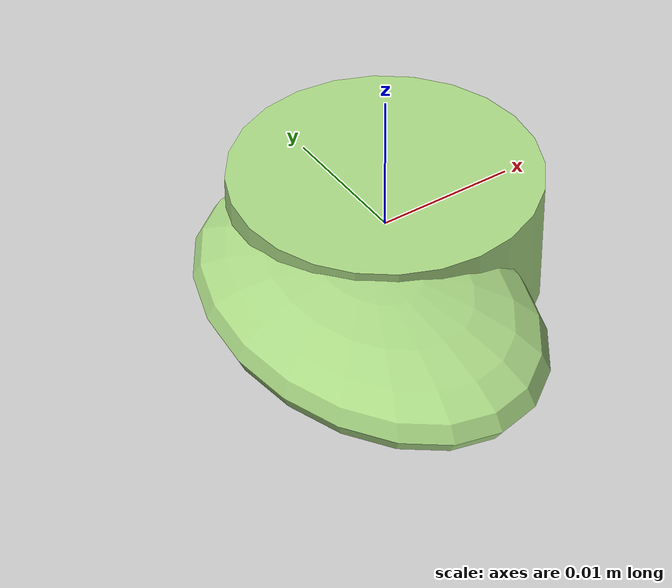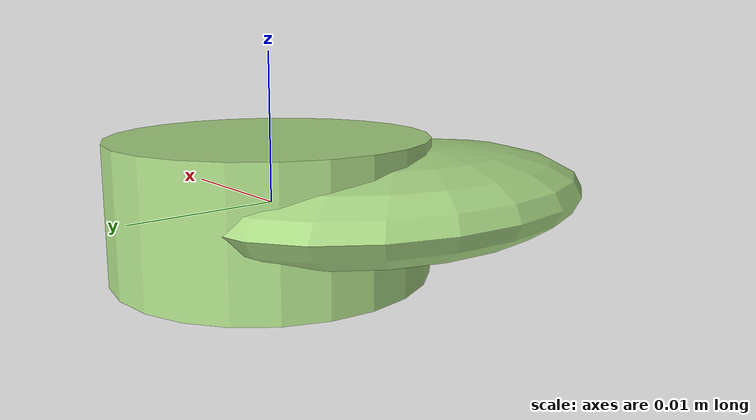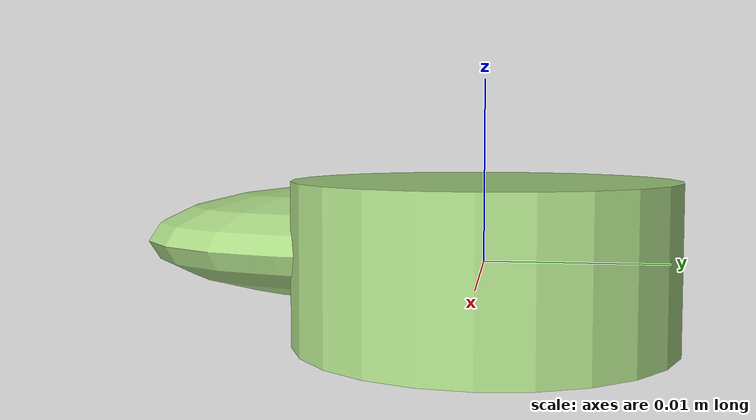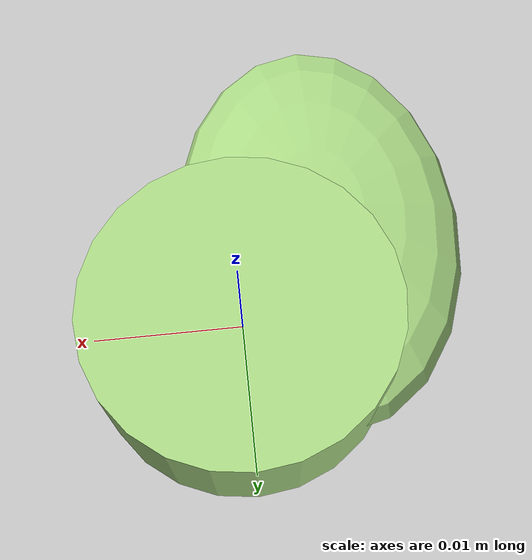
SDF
<?xml version="1.0" ?>
<!-- |    This document was autogenerated by xmacro from data/veggie_template/veggie_base.sdf.xacro  | -->
<!-- |    EDITING THIS FILE BY HAND IS NOT RECOMMENDED                                               | -->
<sdf version="1.8">
	<!-- Parameters -->
	<!-- Base -->
	<!-- Joint 0 -->
	<!-- Link 1 -->
	<!-- Joint 1 -->
	<!-- Link 2 -->
	<!-- Primitives -->
	<!-- All dimensions are half -->
	<!-- Object -->
	<model name="veggie">
		<!-- link0 -->
		<link name="link0">
			<inertial>
				<mass>0.003181725538726972</mass>
				<inertia>
					<ixx>1.1105340195968314e-07</ixx>
					<ixy>0</ixy>
					<ixz>0</ixz>
					<iyy>1.1105340195968314e-07</iyy>
					<iyz>0</iyz>
					<izz>1.7927599660591947e-07</izz>
				</inertia>
			</inertial>
			<visual name="link0_visual">
				<pose>0 0 0 0 0 0</pose>
				<geometry>
					<cylinder>
						<radius>0.010615604102115971</radius>
						<length>0.008987158445396104</length>
					</cylinder>
				</geometry>
				<material>
					<ambient>0.659 0.839 0.514 1</ambient>
					<diffuse>0.659 0.839 0.514 1</diffuse>
					<specular>0 0 0 0</specular>
					<emissive>0 0 0 1</emissive>
				</material>
			</visual>
			<collision name="link0_collision">
				<pose>0 0 0 0 0 0 </pose>
				<geometry>
					<cylinder>
						<radius>0.010615604102115971</radius>
						<length>0.008987158445396104</length>
					</cylinder>
				</geometry>
			</collision>
		</link>
		<!-- link1 -->
		<joint name="joint0" type="fixed">
			<pose relative_to="link0">-0.005845654354233861 -0.006530722438064735 0.0005299135567523901 0.0 0.0 0.0</pose>
			<parent>link0</parent>
			<child>link1</child>
		</joint>
		<link name="link1">
			<pose relative_to="joint0">0 0 0 0 0 0</pose>
			<inertial>
				<mass>0.0020887002720075785</mass>
				<inertia>
					<ixx>9.359478956681939e-08</ixx>
					<ixy>0</ixy>
					<ixz>0</ixz>
					<iyy>4.5489754162158654e-08</iyy>
					<iyz>0</iyz>
					<izz>1.2895525459731781e-07</izz>
				</inertia>
			</inertial>
			<visual name="link1_visual">
				<pose>0 0 0 0 0 0</pose>
				<geometry>
					<ellipsoid>
						<radii>0.009837223611460052 0.014557692053736453 0.0034819411500113698</radii>
					</ellipsoid>
				</geometry>
				<material>
					<ambient>0.659 0.839 0.514 1</ambient>
					<diffuse>0.659 0.839 0.514 1</diffuse>
					<specular>0 0 0 0</specular>
					<emissive>0 0 0 1</emissive>
				</material>
			</visual>
			<collision name="link1_collision">
				<pose>0 0 0 0 0 0 </pose>
				<geometry>
					<ellipsoid>
						<radii>0.009837223611460052 0.014557692053736453 0.0034819411500113698</radii>
					</ellipsoid>
				</geometry>
			</collision>
		</link>
		<!-- link2 -->
	</model>
</sdf>
